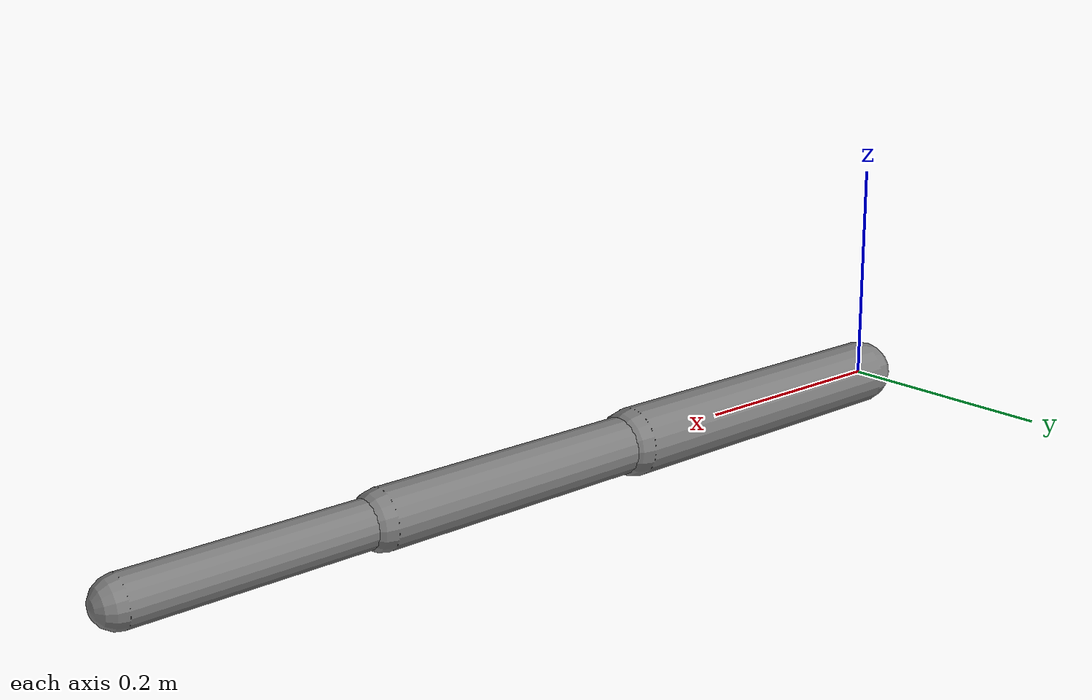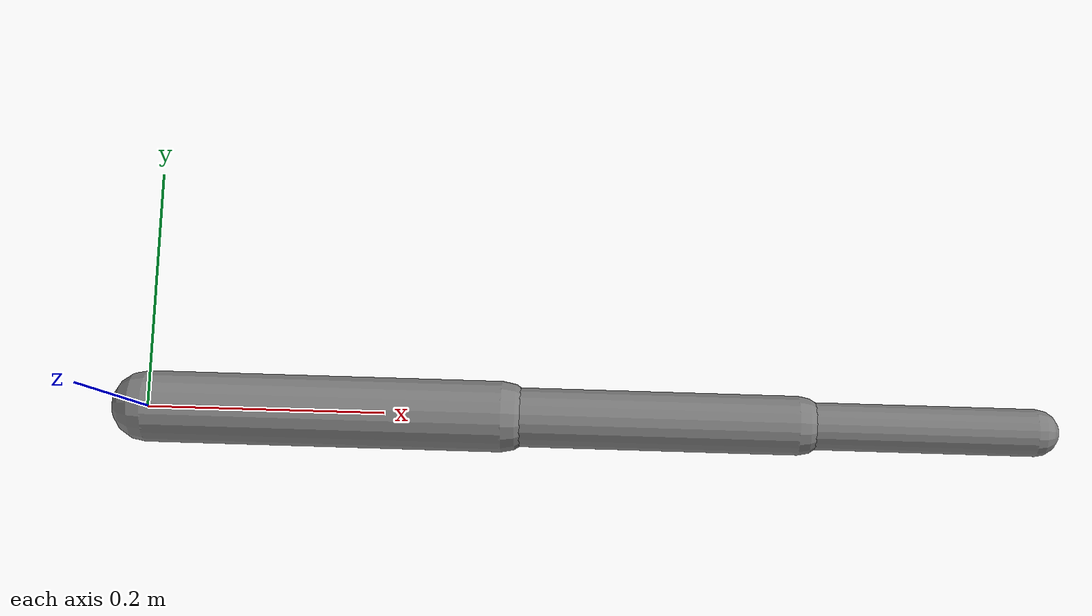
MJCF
<mujoco model="reaching-arm-6dof">
  <compiler angle="radian" inertiafromgeom="true"/>
  <option gravity="0 0 -9.81" timestep="0.002" integrator="RK4">
    <flag contact="disable"/>
  </option>
  <worldbody>
    <body name="seg1" pos="0 0 0">
      <joint name="j1" type="hinge" axis="0 -1 0" damping="2.0"
             limited="true" range="-3.14 3.14"/>
      <joint name="j2" type="hinge" axis="0 0 1" damping="1.5"
             limited="true" range="-1.57 1.57"/>
      <geom type="capsule" fromto="0 0 0 0.3 0 0" size="0.03" mass="0.5"/>
      <body name="seg2" pos="0.3 0 0">
        <joint name="j3" type="hinge" axis="0 -1 0" damping="1.5"
               limited="true" range="-2.6 2.6"/>
        <joint name="j4" type="hinge" axis="0 0 1" damping="1.0"
               limited="true" range="-1.57 1.57"/>
        <geom type="capsule" fromto="0 0 0 0.25 0 0" size="0.025" mass="0.3"/>
        <body name="seg3" pos="0.25 0 0">
          <joint name="j5" type="hinge" axis="0 -1 0" damping="1.0"
                 limited="true" range="-2.6 2.6"/>
          <joint name="j6" type="hinge" axis="0 0 1" damping="0.5"
                 limited="true" range="-1.57 1.57"/>
          <geom type="capsule" fromto="0 0 0 0.2 0 0" size="0.02" mass="0.2"/>
          <site name="fingertip" pos="0.2 0 0" size="0.015"/>
        </body>
      </body>
    </body>
  </worldbody>
  <actuator>
    <motor joint="j1" gear="10" ctrllimited="true" ctrlrange="-1 1"/>
    <motor joint="j2" gear="8"  ctrllimited="true" ctrlrange="-1 1"/>
    <motor joint="j3" gear="6"  ctrllimited="true" ctrlrange="-1 1"/>
    <motor joint="j4" gear="5"  ctrllimited="true" ctrlrange="-1 1"/>
    <motor joint="j5" gear="4"  ctrllimited="true" ctrlrange="-1 1"/>
    <motor joint="j6" gear="3"  ctrllimited="true" ctrlrange="-1 1"/>
  </actuator>
</mujoco>
